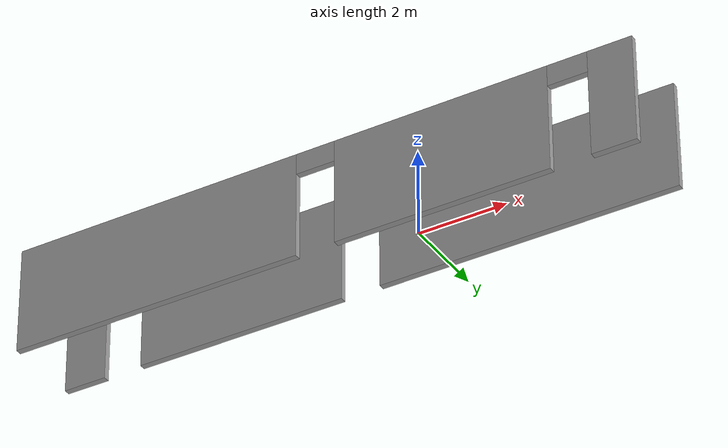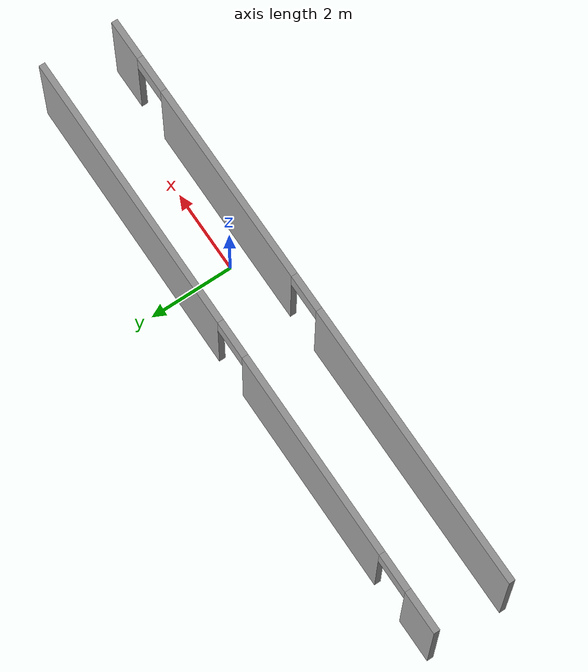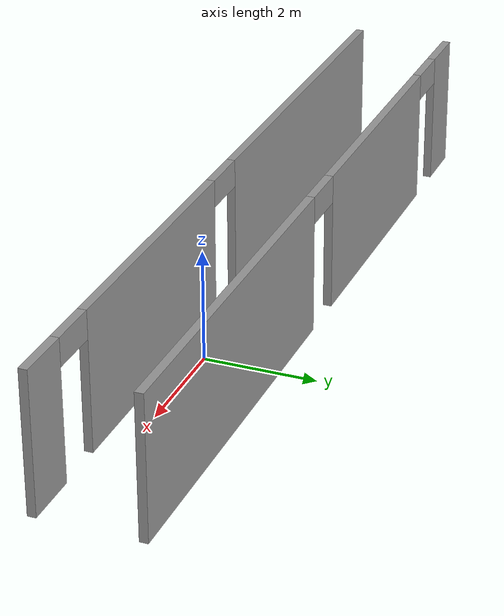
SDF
<?xml version='1.0'?>
<sdf version='1.6'>
  <model name='korytarz_symetryczny'>
    <pose frame=''>-2.0582 0.367986 0 0 -0 0</pose>
    <link name='Wall_0'>
      <pose frame=''>-0.002027 0.899482 0 0 -0 0</pose>
      <visual name='Wall_0_Visual_0'>
        <pose frame=''>-6.75022 0 1.25 0 -0 0</pose>
        <geometry>
          <box>
            <size>0.999559 0.15 2.5</size>
          </box>
        </geometry>
        <material>
          <script>
            <uri>file://media/materials/scripts/gazebo.material</uri>
            <name>Gazebo/Grey</name>
          </script>
          <ambient>1 1 1 1</ambient>
        </material>
        <meta>
          <layer>0</layer>
        </meta>
      </visual>
      <collision name='Wall_0_Collision_0'>
        <geometry>
          <box>
            <size>0.999559 0.15 2.5</size>
          </box>
        </geometry>
        <pose frame=''>-6.75022 0 1.25 0 -0 0</pose>
      </collision>
      <visual name='Wall_0_Visual_1'>
        <pose frame=''>-2.9013 0 1.25 0 -0 0</pose>
        <geometry>
          <box>
            <size>4.89828 0.15 2.5</size>
          </box>
        </geometry>
        <material>
          <script>
            <uri>file://media/materials/scripts/gazebo.material</uri>
            <name>Gazebo/Grey</name>
          </script>
          <ambient>1 1 1 1</ambient>
        </material>
        <meta>
          <layer>0</layer>
        </meta>
      </visual>
      <collision name='Wall_0_Collision_1'>
        <geometry>
          <box>
            <size>4.89828 0.15 2.5</size>
          </box>
        </geometry>
        <pose frame=''>-2.9013 0 1.25 0 -0 0</pose>
      </collision>
      <visual name='Wall_0_Visual_2'>
        <pose frame=''>3.84892 0 1.25 0 -0 0</pose>
        <geometry>
          <box>
            <size>6.80216 0.15 2.5</size>
          </box>
        </geometry>
        <material>
          <script>
            <uri>file://media/materials/scripts/gazebo.material</uri>
            <name>Gazebo/Grey</name>
          </script>
          <ambient>1 1 1 1</ambient>
        </material>
        <meta>
          <layer>0</layer>
        </meta>
      </visual>
      <collision name='Wall_0_Collision_2'>
        <geometry>
          <box>
            <size>6.80216 0.15 2.5</size>
          </box>
        </geometry>
        <pose frame=''>3.84892 0 1.25 0 -0 0</pose>
      </collision>
      <visual name='Wall_0_Visual_3'>
        <pose frame=''>-5.80044 0 2.25 0 -0 0</pose>
        <geometry>
          <box>
            <size>0.9 0.15 0.5</size>
          </box>
        </geometry>
        <material>
          <script>
            <uri>file://media/materials/scripts/gazebo.material</uri>
            <name>Gazebo/Grey</name>
          </script>
          <ambient>1 1 1 1</ambient>
        </material>
        <meta>
          <layer>0</layer>
        </meta>
      </visual>
      <collision name='Wall_0_Collision_3'>
        <geometry>
          <box>
            <size>0.9 0.15 0.5</size>
          </box>
        </geometry>
        <pose frame=''>-5.80044 0 2.25 0 -0 0</pose>
      </collision>
      <visual name='Wall_0_Visual_4'>
        <pose frame=''>-0.002157 0 2.25 0 -0 0</pose>
        <geometry>
          <box>
            <size>0.9 0.15 0.5</size>
          </box>
        </geometry>
        <material>
          <script>
            <uri>file://media/materials/scripts/gazebo.material</uri>
            <name>Gazebo/Grey</name>
          </script>
          <ambient>1 1 1 1</ambient>
        </material>
        <meta>
          <layer>0</layer>
        </meta>
      </visual>
      <collision name='Wall_0_Collision_4'>
        <geometry>
          <box>
            <size>0.9 0.15 0.5</size>
          </box>
        </geometry>
        <pose frame=''>-0.002157 0 2.25 0 -0 0</pose>
      </collision>
    </link>
    <link name='Wall_2'>
      <pose frame=''>0.002028 -0.899483 0 0 -0 0</pose>
      <visual name='Wall_2_Visual_0'>
        <pose frame=''>-3.85157 0 1.25 0 -0 0</pose>
        <geometry>
          <box>
            <size>6.79686 0.15 2.5</size>
          </box>
        </geometry>
        <material>
          <script>
            <uri>file://media/materials/scripts/gazebo.material</uri>
            <name>Gazebo/Grey</name>
          </script>
          <ambient>1 1 1 1</ambient>
        </material>
        <meta>
          <layer>0</layer>
        </meta>
      </visual>
      <collision name='Wall_2_Collision_0'>
        <geometry>
          <box>
            <size>6.79686 0.15 2.5</size>
          </box>
        </geometry>
        <pose frame=''>-3.85157 0 1.25 0 -0 0</pose>
      </collision>
      <visual name='Wall_2_Visual_1'>
        <pose frame=''>2.89889 0 1.25 0 -0 0</pose>
        <geometry>
          <box>
            <size>4.90406 0.15 2.5</size>
          </box>
        </geometry>
        <material>
          <script>
            <uri>file://media/materials/scripts/gazebo.material</uri>
            <name>Gazebo/Grey</name>
          </script>
          <ambient>1 1 1 1</ambient>
        </material>
        <meta>
          <layer>0</layer>
        </meta>
      </visual>
      <collision name='Wall_2_Collision_1'>
        <geometry>
          <box>
            <size>4.90406 0.15 2.5</size>
          </box>
        </geometry>
        <pose frame=''>2.89889 0 1.25 0 -0 0</pose>
      </collision>
      <visual name='Wall_2_Visual_2'>
        <pose frame=''>6.75046 0 1.25 0 -0 0</pose>
        <geometry>
          <box>
            <size>0.999077 0.15 2.5</size>
          </box>
        </geometry>
        <material>
          <script>
            <uri>file://media/materials/scripts/gazebo.material</uri>
            <name>Gazebo/Grey</name>
          </script>
          <ambient>1 1 1 1</ambient>
        </material>
        <meta>
          <layer>0</layer>
        </meta>
      </visual>
      <collision name='Wall_2_Collision_2'>
        <geometry>
          <box>
            <size>0.999077 0.15 2.5</size>
          </box>
        </geometry>
        <pose frame=''>6.75046 0 1.25 0 -0 0</pose>
      </collision>
      <visual name='Wall_2_Visual_3'>
        <pose frame=''>-0.003138 0 2.25 0 -0 0</pose>
        <geometry>
          <box>
            <size>0.9 0.15 0.5</size>
          </box>
        </geometry>
        <material>
          <script>
            <uri>file://media/materials/scripts/gazebo.material</uri>
            <name>Gazebo/Grey</name>
          </script>
          <ambient>1 1 1 1</ambient>
        </material>
        <meta>
          <layer>0</layer>
        </meta>
      </visual>
      <collision name='Wall_2_Collision_3'>
        <geometry>
          <box>
            <size>0.9 0.15 0.5</size>
          </box>
        </geometry>
        <pose frame=''>-0.003138 0 2.25 0 -0 0</pose>
      </collision>
      <visual name='Wall_2_Visual_4'>
        <pose frame=''>5.80092 0 2.25 0 -0 0</pose>
        <geometry>
          <box>
            <size>0.9 0.15 0.5</size>
          </box>
        </geometry>
        <material>
          <script>
            <uri>file://media/materials/scripts/gazebo.material</uri>
            <name>Gazebo/Grey</name>
          </script>
          <ambient>1 1 1 1</ambient>
        </material>
        <meta>
          <layer>0</layer>
        </meta>
      </visual>
      <collision name='Wall_2_Collision_4'>
        <geometry>
          <box>
            <size>0.9 0.15 0.5</size>
          </box>
        </geometry>
        <pose frame=''>5.80092 0 2.25 0 -0 0</pose>
      </collision>
    </link>
    <static>1</static>
  </model>
</sdf>
